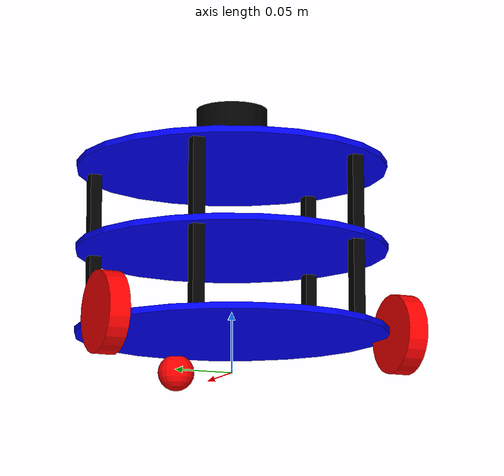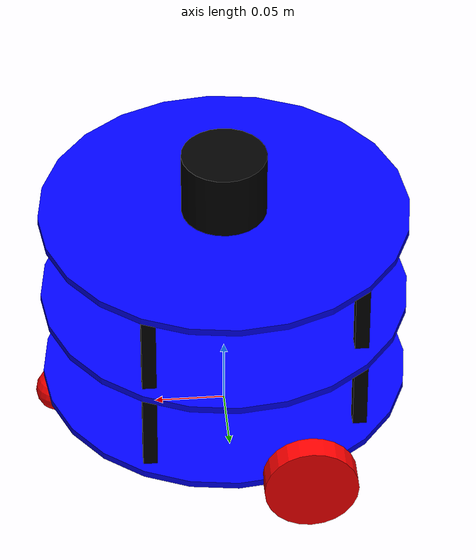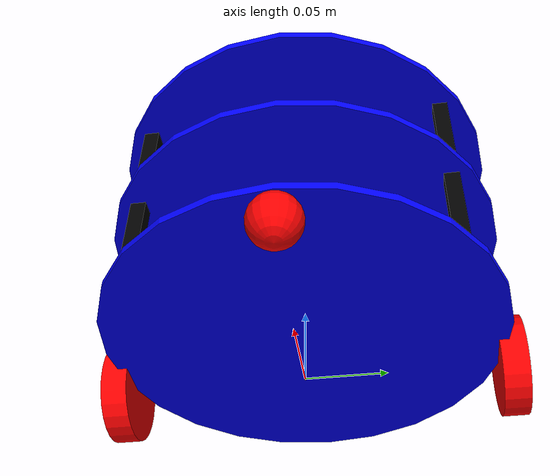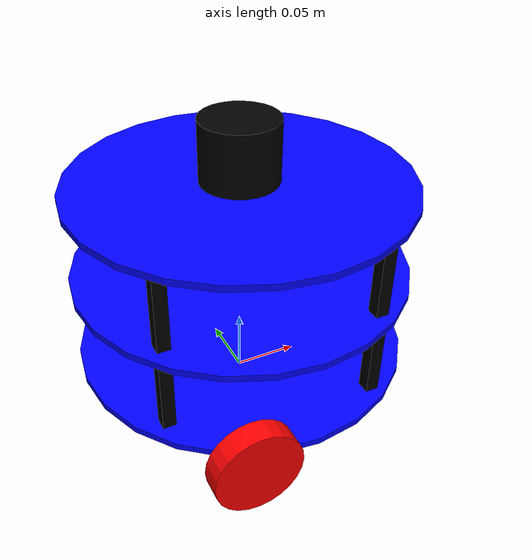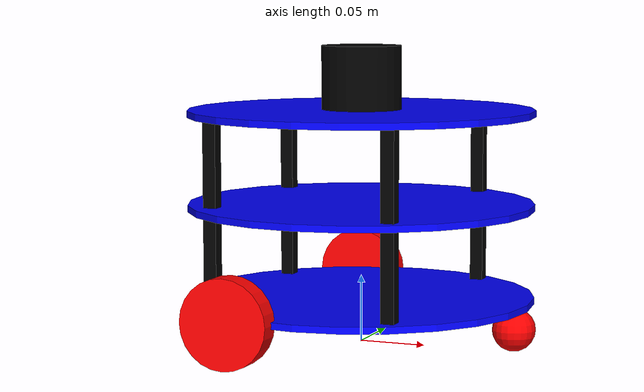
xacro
<?xml version="1.0"?>
<robot name="mrobot" xmlns:xacro="http://www.ros.org/wiki/xacro">
	<xacro:include filename="$(find mrobot_gazebo)/urdf/mrobot_body.urdf.xacro"/>
	<xacro:include filename="$(find mrobot_gazebo)/urdf/rplidar.xacro"/>

	<xacro:property name="rplidar_offset_x" value="0"/>
	<xacro:property name="rplidar_offset_y" value="0"/>
	<xacro:property name="rplidar_offset_z" value="0.025"/>

	<!-- MRobot机器人平台 -->
	<mrobot_body/>

	<!-- rplidar -->
	<joint name="rplidar_frame_joint" type="fixed">
		<origin xyz="${rplidar_offset_x} ${rplidar_offset_y} ${rplidar_offset_z}" rpy="0 0 0"/>
		<parent link="plate_2_link"/>
		<child link="laser_link"/>
	</joint>
	<xacro:rplidar prefix="laser"/>
</robot>

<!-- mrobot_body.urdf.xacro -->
<robot name="mrobot" xmlns:xacro="http://www.ros.org/wiki/xacro">

    <!-- PROPERTY LIST -->
	<xacro:property name="M_PI" value="3.14159265358" />
	<xacro:property name="wheel_radius" value="0.033" />
	<xacro:property name="wheel_height" value="0.017" />
    <xacro:property name="wheel_mass" value="0.1"/>
    <xacro:property name="caster_radius" value="0.016"/>
    <xacro:property name="caster_mass" value="0.01"/>
    <xacro:property name="caster_joint_origin_x" value="-0.12"/>
    <xacro:property name="base_mass" value="0.5"/>
	<xacro:property name="base_link_radius" value="0.13" />
	<xacro:property name="base_link_length" value="0.005" />
	<xacro:property name="motor_x" value="-0.05" />
    <xacro:property name="plate_mass" value="0.05"/>
	<xacro:property name="plate_height" value="0.07" />
	<xacro:property name="standoff_x" value="0.12" />
	<xacro:property name="standoff_y" value="0.10" />

    <!-- COLOR LIST -->
    <material name="Black">
        <color rgba="0 0 0 1"/>
    </material>

    <material name="White">
        <color rgba="1 1 1 1"/>
    </material>

    <material name="Blue">
        <color rgba="0 0 1 1"/>
    </material>

    <material name="Red">
        <color rgba="1 0 0 1"/>
    </material>

    <material name="Yellow">
        <color rgba="1 1 0 1"/>
    </material>

    <!-- MACRO FOR INERTIA MATRIX -->
    <xacro:macro name="sphere_inertial_matrix" params="m r">
        <inertial>
            <mass value="${m}"/>
            <inertia ixx="${2*m*r*r/5}" ixy="0" ixz="0" iyy="${2*m*r*r/5}" iyz="0" izz="${2*m*r*r/5}"/>
        </inertial>
    </xacro:macro>

    <xacro:macro name="cylinder_inertial_matrix" params="m r h">
        <inertial>
            <mass value="${m}"/>
            <inertia ixx="${m*(3*r*r+h*h)/12}" ixy="0" ixz="0" iyy="${m*(3*r*r+h*h)/12}" iyz="0" izz="${m*r*r/2}"/>
        </inertial>
    </xacro:macro>

    <xacro:macro name="box_inertial_matrix" params="m w h d">
        <inertial>
            <mass value="${m}"/>
            <inertia ixx="${m*(h*h+d*d)/12}" ixy="0" ixz="0" iyy="${m*(w*w+d*d)/12}" iyz="0" izz="${m*(w*w+d*d)/12}"/>
        </inertial>
    </xacro:macro>

    <!-- MACRO FOR JOINT WHEEL -->
    <xacro:macro name="wheel" params="lr translateY">
        <link name="wheel_${lr}_link">
            <cylinder_inertial_matrix m="${wheel_mass}" r="${wheel_radius}" h="${wheel_height}"/>
            <visual>
                <origin xyz="0 0 0" rpy="${M_PI/2} 0 0"/>
                <geometry>
                    <cylinder length="${wheel_height}" radius="${wheel_radius}"/>
                </geometry>
                <material name="Red"/>
            </visual>
            <collision>
                <origin xyz="0 0 0" rpy="${M_PI/2} 0 0"/>
                <geometry>
                    <cylinder length="${wheel_height}" radius="${wheel_radius}"/>
                </geometry>
            </collision>
        </link>

        <gazebo reference="wheel_${lr}_link">
            <material>Gazebo/Red</material>
        </gazebo>

        <joint name="base_to_wheel_${lr}_joint" type="continuous">
            <origin xyz="${motor_x} ${translateY*base_link_radius} 0" rpy="0 0 0"/>
            <parent link="base_link"/>
            <child link="wheel_${lr}_link"/>
            <axis xyz="0 1 0"/>
        </joint>

        <!-- Transmission(link the joints and the controllers) -->
        <transmission name="wheel_${lr}_joint_trans">
            <type>transmission_interface/SimpleTransmission</type>
            <joint name="base_to_wheel_${lr}_joint"/>
            <acuator name="wheel_${lr}_joint_motor">
                <hardwareInterface>VelocityJointInterface</hardwareInterface>
                <mechanicalReduction>1</mechanicalReduction>
            </acuator>
        </transmission>
    </xacro:macro>

    <!-- MACRO FOR CASTER JOINT -->
    <xacro:macro name="caster" params="fb translateX">
        <link name="${fb}_caster_link">
            <sphere_inertial_matrix m="${caster_mass}" r="${caster_radius}"/>
            <visual>
                <origin xyz="0 0 0" rpy="0 0 0"/>
                <geometry>
                    <sphere radius="${caster_radius}"/>
                </geometry>
                <material name="Red"/>
            </visual>
            <collision>
                <origin xyz="0 0 0" rpy="0 0 0"/>
                <geometry>
                    <sphere radius="${caster_radius}"/>
                </geometry>
            </collision>
        </link>

        <gazebo reference="${fb}_caster_link">
            <material>Gazebo/Red</material>
        </gazebo>

        <joint name="base_to_${fb}_caster_joint" type="fixed">
            <origin xyz="${translateX*caster_joint_origin_x} 0 ${-caster_radius}" rpy="0 0 0"/>
            <parent link="base_link"/>
            <child link="${fb}_caster_link"/>
        </joint>
    </xacro:macro>

    <!-- MACRO FOR PLATE JOINT -->
    <xacro:macro name="plate" params="num parent">
        <link name="plate_${num}_link">
            <cylinder_inertial_matrix m="${plate_mass}" r="${base_link_radius}" h="${base_link_length}"/>
            <visual>
                <origin xyz="0 0 0" rpy="0 0 0"/>
                <geometry>
                    <cylinder radius="${base_link_radius}" length="${base_link_length}"/>
                </geometry>
                <material name='Blue'/>
            </visual>
            <collision>
                <origin xyz="0 0 0" rpy="0 0 0"/>
                <geometry>
                    <cylinder radius="${base_link_radius}" length="${base_link_length}"/>
                </geometry>
            </collision>
        </link>

        <gazebo reference="plate_${num}_link">
            <material>Gazebo/Blue</material>
        </gazebo>

        <joint name="plate_${num}_joint" type="fixed">
            <origin xyz="0 0 ${plate_height}" rpy="0 0 0"/>
            <parent link="${parent}"/>
            <child link="plate_${num}_link"/>
        </joint>
    </xacro:macro>

    <!-- MACRO FOR STANDOFF JOINT -->
    <xacro:macro name="mrobot_standoff_2in" params="parent number x_loc y_loc z_loc">
        <link name="standoff_2in_${number}_link">
            <inertial>
                <origin xyz="0 0 0" rpy="0 0 0"/>
                <mass value="0.001"/>
                <inertia ixx="0.0001" ixy="0.0" ixz="0.0" iyy="0.0001" iyz="0.0" izz="0.0001"/>
            </inertial>
            <visual>
                <origin xyz="0 0 0" rpy="0 0 0"/>
                <geometry>
                    <box size="0.01 0.01 0.07"/>
                </geometry>
                <material name="Black"/>
            </visual>
            <collision>
                <origin xyz="0 0 0" rpy="0 0 0"/>
                <geometry>
                    <box size="0.01 0.01 0.07"/>
                </geometry>
            </collision>
        </link>

        <gazebo reference="standoff_2in_${number}_link">
            <material>Gazebo/Black</material>
        </gazebo>

        <joint name="standoff_2in_${number}_joint" type="fixed">
            <origin xyz="${x_loc} ${y_loc} ${z_loc}" rpy="0 0 0"/>
            <parent link="${parent}"/>
            <child link="standoff_2in_${number}_link"/>
        </joint>
    </xacro:macro>

    <!-- BASE_FOOTPRINT(fictitious) -->
    <xacro:macro name="mrobot_body">
        <link name="base_footprint_link">
            <visual>
                <origin xyz="0 0 0" rpy="0 0 0"/>
                <geometry>
                    <box size="0.001 0.001 0.001"/>
                </geometry>
            </visual>
        </link>

        <joint name="base_footprint_joint" type="fixed">
            <origin xyz="0 0 ${wheel_radius}" rpy="0 0 0"/>
            <parent link="base_footprint_link"/>
            <child link="base_link"/>
        </joint>

        <!-- BASE_LINK -->
        <link name="base_link">
            <cylinder_inertial_matrix m="${base_mass}" r="${base_link_radius}" h="${base_link_length}"/>
            <visual>
                <origin xyz="0 0 0" rpy="0 0 0"/>
                <geometry>
                    <cylinder radius="${base_link_radius}" length="${base_link_length}"/>
                </geometry>
                <material name="Blue"/>
            </visual>
            <collision>
                <origin xyz="0 0 0" rpy="0 0 0"/>
                <geometry>
                    <cylinder radius="${base_link_radius}" length="${base_link_length}"/>
                </geometry>
            </collision>
        </link>

        <gazebo reference="base_link">
            <material>Gazebo/Blue</material>
        </gazebo>

        <wheel lr="right" translateY="1"/>
        <wheel lr="left" translateY="-1"/>
        <caster fb="front" translateX="-1"/>

        <mrobot_standoff_2in parent="base_link" number="1" x_loc="-${standoff_x/2 + 0.03}" y_loc="-${standoff_y - 0.03}" z_loc="${plate_height/2}"/>
        <mrobot_standoff_2in parent="base_link" number="2" x_loc="-${standoff_x/2 + 0.03}" y_loc="${standoff_y - 0.03}" z_loc="${plate_height/2}"/>
        <mrobot_standoff_2in parent="base_link" number="3" x_loc="${standoff_x/2}" y_loc="-${standoff_y}" z_loc="${plate_height/2}"/>
        <mrobot_standoff_2in parent="base_link" number="4" x_loc="${standoff_x/2}" y_loc="${standoff_y}" z_loc="${plate_height/2}"/>
        <mrobot_standoff_2in parent="standoff_2in_1_link" number="5" x_loc="0" y_loc="0" z_loc="${plate_height}"/>
        <mrobot_standoff_2in parent="standoff_2in_2_link" number="6" x_loc="0" y_loc="0" z_loc="${plate_height}"/>
        <mrobot_standoff_2in parent="standoff_2in_3_link" number="7" x_loc="0" y_loc="0" z_loc="${plate_height}"/>
        <mrobot_standoff_2in parent="standoff_2in_4_link" number="8" x_loc="0" y_loc="0" z_loc="${plate_height}"/>

        <plate num="1" parent="base_link"/>
        <plate num="2" parent="plate_1_link"/>

        <gazebo>
            <plugin name="differentiall_drive_controller" filename="libgazebo_ros_diff_drive.so">
                <rosDebugLevle>Debug</rosDebugLevle>
                <publishWheelTF>true</publishWheelTF>
                <robotNamespace>/</robotNamespace>
                <publishTf>1</publishTf>
                <publishWheelJointState>true</publishWheelJointState>
                <alwaysOn>true</alwaysOn>
                <updateRate>100.0</updateRate>
                <legacyMode>true</legacyMode>
                <leftJoint>base_to_wheel_left_joint</leftJoint>
                <rightJoint>base_to_wheel_right_joint</rightJoint>
                <wheelSeparation>${base_link_radius*2}</wheelSeparation>
                <wheelDiameter>${wheel_radius*2}</wheelDiameter>
                <broadcastTF>1</broadcastTF>
                <wheelTorque>30</wheelTorque>
                <wheelAcceleration>1.8</wheelAcceleration>
                <commandTopic>cmd_vel</commandTopic>
                <odometryFrame>odom</odometryFrame>
                <odometryTopic>odom</odometryTopic>
                <robotBaseFrame>base_footprint</robotBaseFrame>
            </plugin>
        </gazebo>
    </xacro:macro>
</robot>

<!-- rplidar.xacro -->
<robot name="laser" xmlns:xacro="http://www.ros.org/wiki/xacro">

	<xacro:property name="rplidar_radius" value="0.03"/>
	<xacro:property name="rplidar_height" value="0.05"/>

	<xacro:macro name="rplidar" params="prefix:=laser">

		<link name="${prefix}_link">
			<visual>
				<origin xyz="0 0 0" rpy="0 0 0"/>
				<geometry>
					<cylinder radius="${rplidar_radius}" length="${rplidar_height}"/>
				</geometry>
				<material name="Black"/>
			</visual>
			<collision>
				<origin xyz="0 0 0" rpy="0 0 0"/>
				<geometry>
					<cylinder radius="${rplidar_radius}" length="${rplidar_height}"/>
				</geometry>
			</collision>
		</link>

		<gazebo reference="${prefix}_link">
			<material>Gazebo/Black</material>
		</gazebo>
		<gazebo reference="${prefix}_link">
			<sensor type="ray" name="rplidar">
				<pose>0 0 0 0 0 0</pose>
				<visualize>false</visualize>
				<update_rate>5.5</update_rate>
				<ray>
					<scan>
						<horizontal>
							<samples>360</samples>
							<resolution>1</resolution>
							<min_angle>-3</min_angle>
							<max_angle>3</max_angle>
						</horizontal>
					</scan>
					<range>
						<min>0.10</min>
						<max>6.0</max>
						<resolution>0.01</resolution>
					</range>
					<noise>
						<type>gaussian</type>
						<mean>0.0</mean>
						<stddev>0.01</stddev>
					</noise>
				</ray>
				<plugin name="gazebo_rplidar" filename="libgazebo_ros_laser.so">
					<topicName>/scan</topicName>
					<frameName>laser_link</frameName>
				</plugin>
			</sensor>
		</gazebo>
	</xacro:macro>
</robot>
